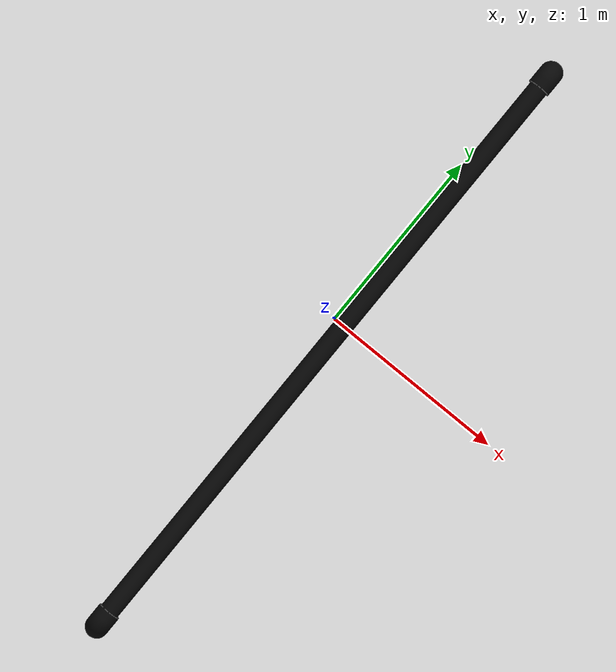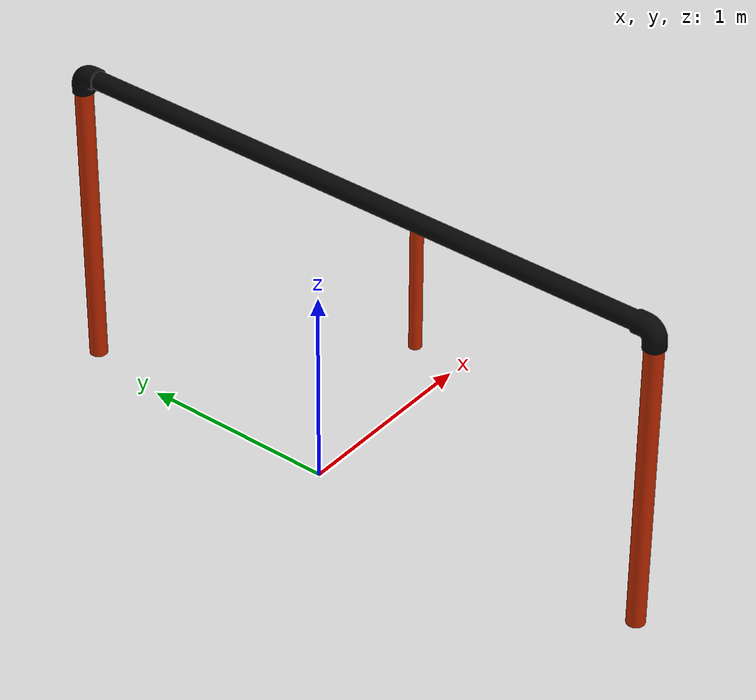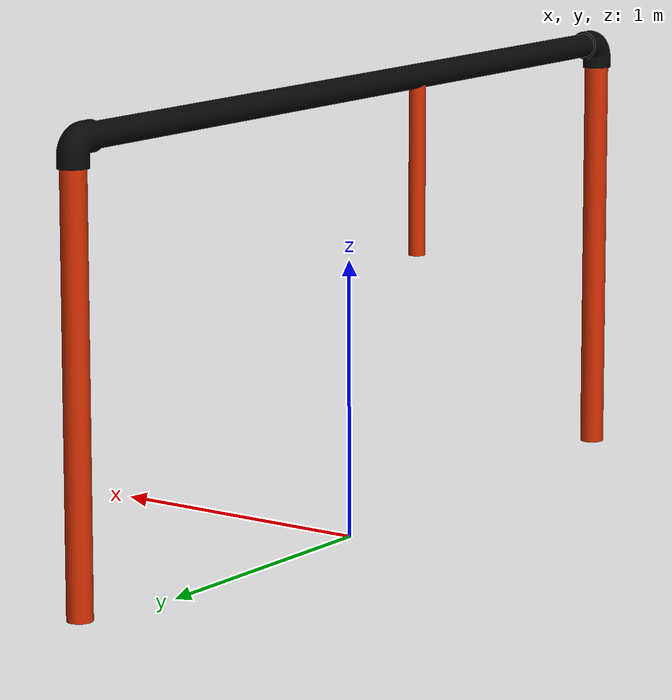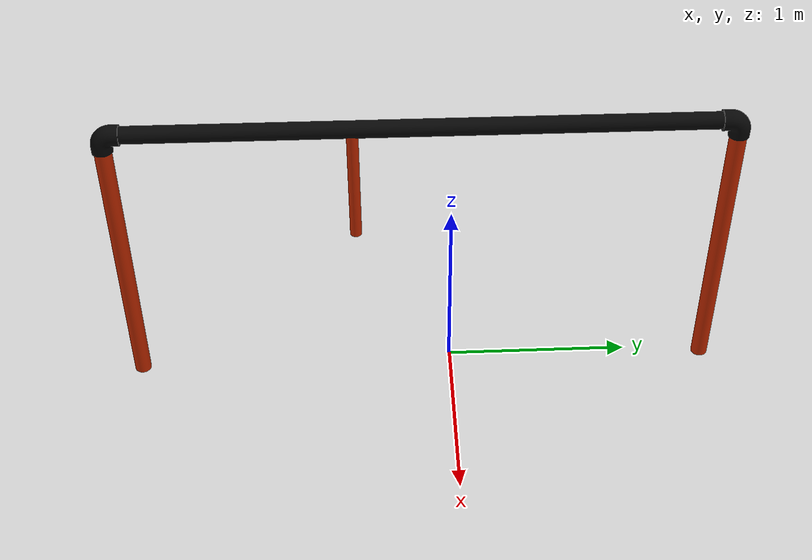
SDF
<?xml version='1.0'?>
<sdf version="1.7">
    <model name="gate">
        <static>true</static>
        <link name="base">
            <inertial>
                <mass>1.0</mass>
                <inertia>
                    <ixx>0.010</ixx>
                    <ixy>0.0</ixy>
                    <ixz>0.0</ixz>
                    <iyy>0.010</iyy>
                    <iyz>0.0</iyz>
                    <izz>0.010</izz>
                </inertia>
            </inertial>

            <visual name="visual">
                <geometry>
                    <mesh><uri>model://gate/gate.dae</uri></mesh>
                </geometry>
            </visual>

            <collision name="collision">
                 <geometry>
                    <mesh><uri>model://gate/gate.dae</uri></mesh>
                </geometry>
            </collision>
        </link>
    </model>
</sdf>
